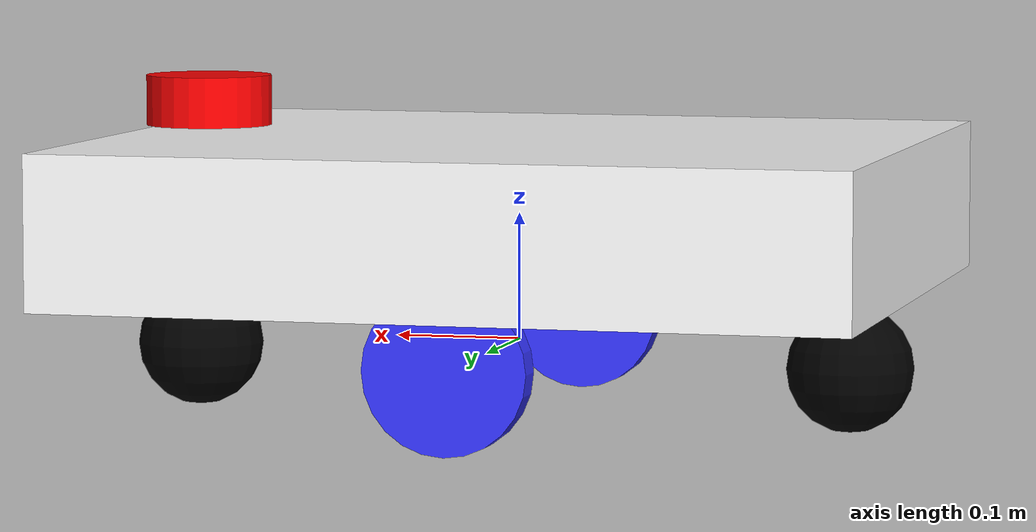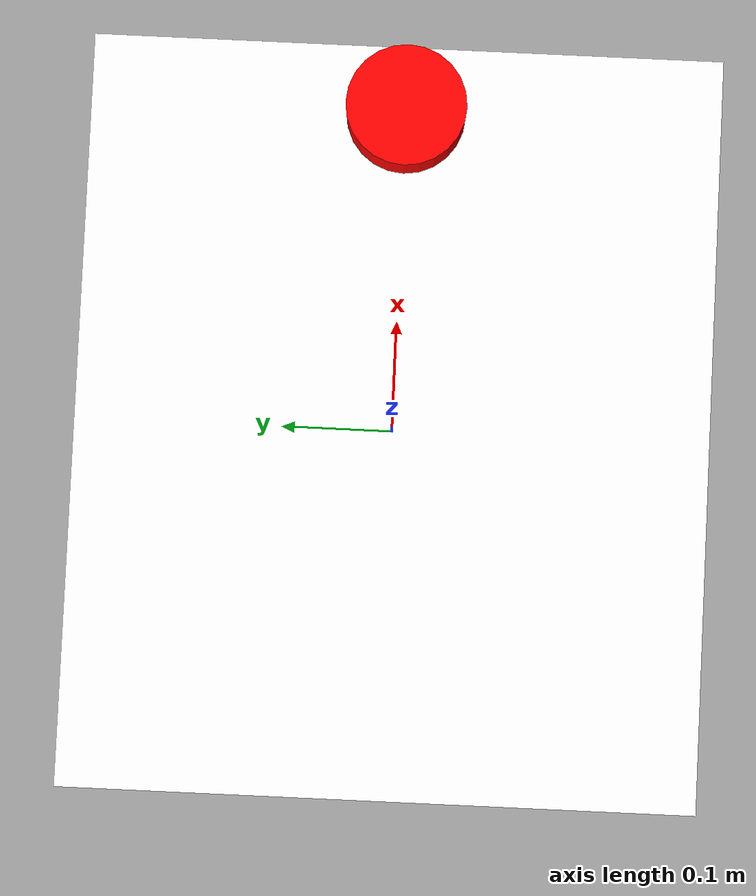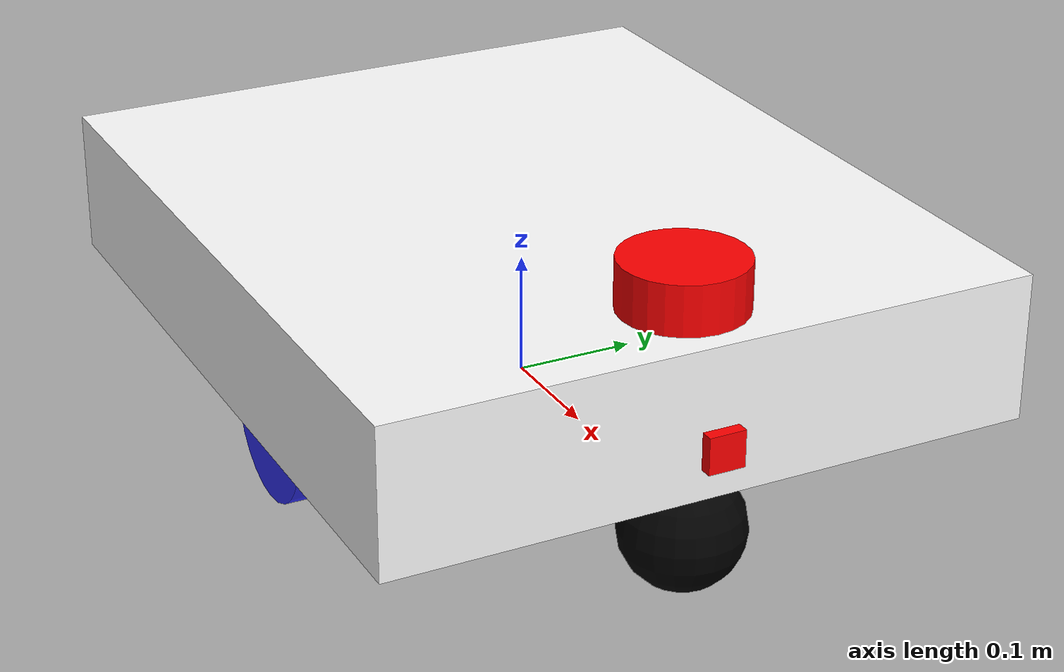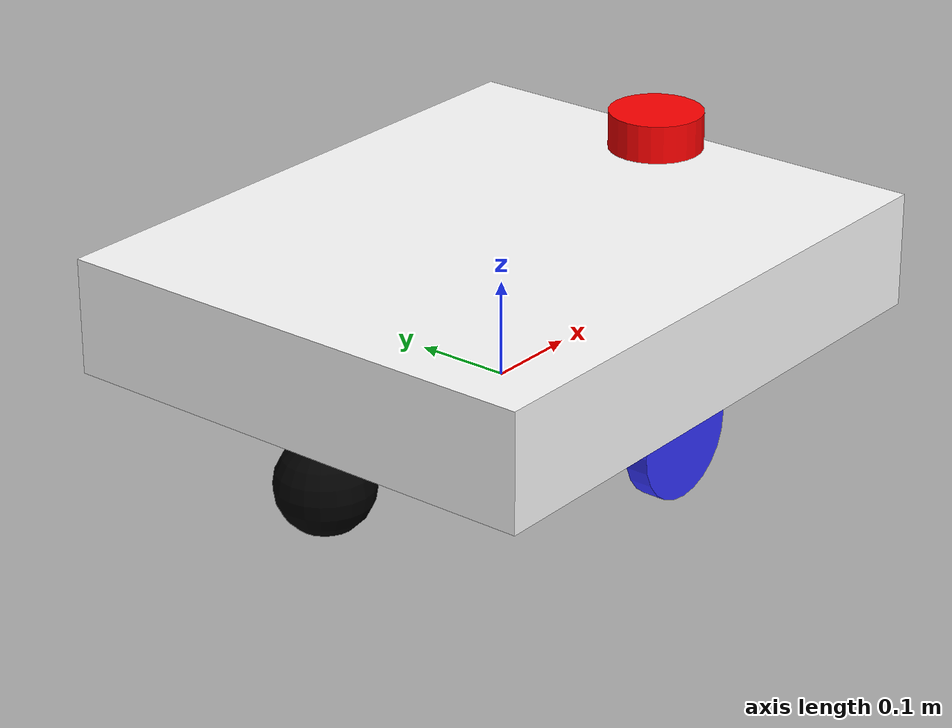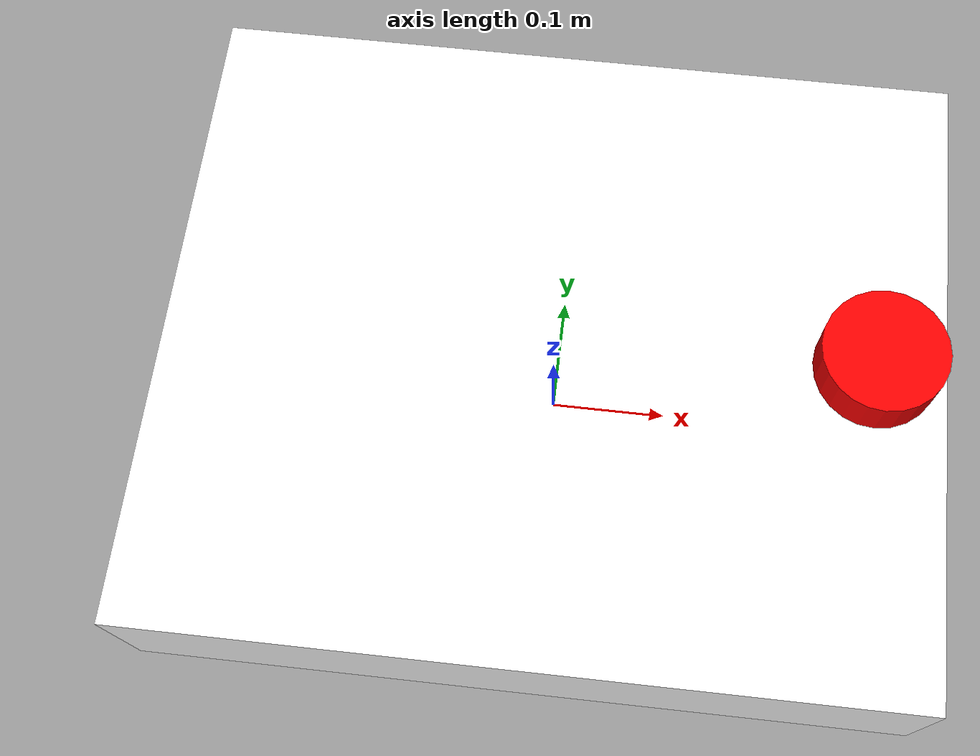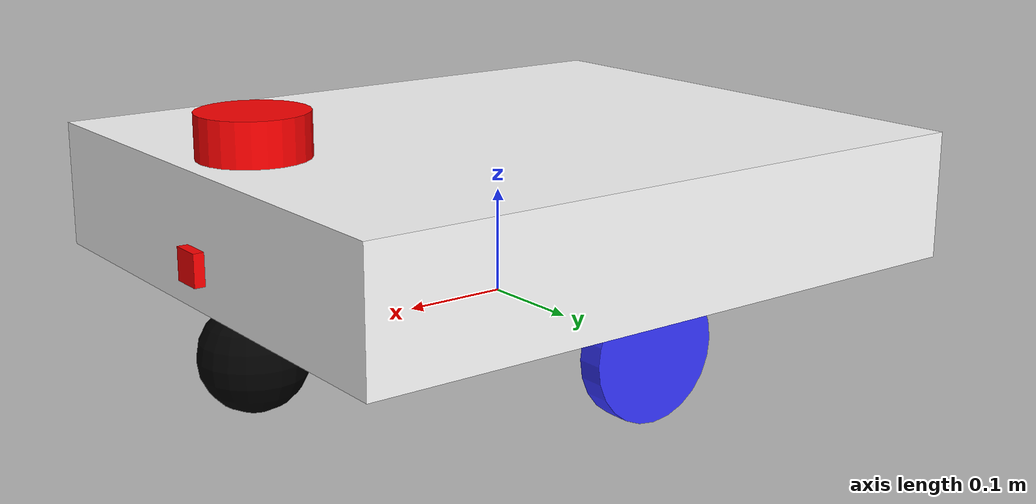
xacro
<?xml version="1.0"?>
<robot xmlns:xacro="http://www.ros.org/wiki/xacro" name="robot">
    <xacro:arg name="use_ros2_control" default="true"/>
    <xacro:arg name="sim_mode" default="false"/>

    <xacro:include filename="robot_core.xacro"/>

    <xacro:if value="$(arg use_ros2_control)">
        <xacro:include filename="ros2_control.xacro"/>
    </xacro:if>
    <xacro:unless value="$(arg use_ros2_control)">
        <xacro:include filename="gazebo_control.xacro"/>
    </xacro:unless>

    <xacro:include filename="lidar.xacro"/>
    <xacro:include filename="camera.xacro"/>
</robot>

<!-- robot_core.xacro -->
<robot xmlns:xacro="http://www.ros.org/wiki/xacro" >

    <xacro:include filename="inertial_macros.xacro"/>

    <material name="white">
        <color rgba="1 1 1 1"/>
    </material>
    <material name="orange">
        <color rgba="1 0.3 0.1 1"/>
    </material>
    <material name="blue">
        <color rgba="0.2 0.2 1 1"/>
    </material>
    <material name="black">
        <color rgba="0 0 0 1"/>
    </material>
    <material name="red">
        <color rgba="1 0 0 1"/>
    </material>

    <!-- BASE LINK -->

    <link name="base_link">
    </link>

    <!-- BASE FOOTPRINT     -->
    <joint name="base_footprint_joint" type="fixed">
        <parent link="base_link"/>
        <child link="base_footprint"/>
        <origin xyz="0 0 0" rpy="0 0 0"/>
    </joint>

    <link name="base_footprint">
    </link>

    <!-- CHASSIS LINK  -->
    <joint name="chassis_joint" type="fixed">
        <parent link="base_link"/>
        <child link="chassis"/>
        <origin xyz="-0.315 0.0 0.0"/>
    </joint>

    <link name="chassis">
        <visual>
            <origin xyz="0.315 0.0 0.1" rpy="0.0 0.0 0.0"/>
            <geometry>
                <box size="0.63 0.53 0.12"/>
            </geometry>
            <material name="white"/>
        </visual>
        <collision>
            <origin xyz="0.315 0.0 0.1" rpy="0.0 0.0 0.0"/>
            <geometry>
                <box size="0.63 0.53 0.12"/>
            </geometry>
        </collision>
        <xacro:inertial_box mass="0.5" x="0.63" y="0.53" z="0.12">
            <origin xyz="0.315 0.0 0.1" rpy="0.0 0.0 0.0"/>
        </xacro:inertial_box>
    </link>
    <gazebo reference="chassis">
        <material>
            Gazebo/White
        </material>
    </gazebo>

    <!-- LEFT WHEEL -->
    <joint name="left_wheel_joint" type="continuous">
        <parent link="base_link"/>
        <child link="left_wheel"/>
        <origin xyz="0.0 0.2125 0.0" rpy="-${pi/2} 0 0"/>
        <axis xyz="0.0 0.0 1.0"/>
    </joint>

    <link name="left_wheel">
        <visual>
            <geometry>
                <cylinder radius="0.0635" length="0.024"/>
            </geometry>
            <material name="blue"/>
        </visual>
        <collision>
            <geometry>
                <sphere radius="0.0635"/>
            </geometry>
        </collision>
        <xacro:inertial_cylinder mass="0.1" length="0.024" radius="0.0635">
            <origin xyz="0 0 0" rpy="0 0 0"/>
        </xacro:inertial_cylinder>
    </link>
    <gazebo reference="left_wheel">
        <material>
            Gazebo/Blue
        </material>
    </gazebo>

    <!-- RIGHT WHEEL -->
    <joint name="right_wheel_joint" type="continuous">
        <parent link="base_link"/>
        <child link="right_wheel"/>
        <origin xyz="0.0 -0.2125 0.0" rpy="${pi/2} 0 0"/>
        <axis xyz="0.0 0.0 -1.0"/>
    </joint>

    <link name="right_wheel">
        <visual>
            <geometry>
                <cylinder radius="0.0635" length="0.024"/>
            </geometry>
            <material name="blue"/>
        </visual>
        <collision>
            <geometry>
                <sphere radius="0.0635"/>
            </geometry>
        </collision>
        <xacro:inertial_cylinder mass="0.1" length="0.024" radius="0.0635">
            <origin xyz="0 0 0" rpy="0 0 0"/>
        </xacro:inertial_cylinder>
    </link>
    <gazebo reference="right_wheel">
        <material>
            Gazebo/Blue
        </material>
    </gazebo>

    <!-- CASTER WHEEL REAR LINK  -->
    <joint name="rear_caster_wheel_joint" type="fixed">
        <parent link="chassis"/>
        <child link="rear_caster_wheel"/>
        <origin xyz="0.58 0.0 -0.01"/>
    </joint>
    <link name="rear_caster_wheel">
        <visual>
            <geometry>
                <sphere radius="0.05"/>
            </geometry>
            <material name="black"/>
        </visual>
        <collision>
            <geometry>
                <sphere radius="0.05"/>
            </geometry>
        </collision>
        <xacro:inertial_sphere mass="0.1" radius="0.05">
            <origin xyz="0.0 0.0 0.0" rpy="0.0 0.0 0.0"/>
        </xacro:inertial_sphere>
    </link>
    <gazebo reference="rear_caster_wheel">
        <material>
            Gazebo/Black
        </material>
    </gazebo>

    <!-- CASTER WHEEL BACK LINK  -->
    <joint name="back_caster_wheel_joint" type="fixed">
        <parent link="chassis"/>
        <child link="back_caster_wheel"/>
        <origin xyz="0.05 0.0 -0.015"/>
    </joint>
    <link name="back_caster_wheel">
        <visual>
            <geometry>
                <sphere radius="0.05"/>
            </geometry>
            <material name="black"/>
        </visual>
        <collision>
            <geometry>
                <sphere radius="0.05"/>
            </geometry>
        </collision>
        <xacro:inertial_sphere mass="0.1" radius="0.05">
            <origin xyz="0.0 0.0 0.0" rpy="0.0 0.0 0.0"/>
        </xacro:inertial_sphere>
    </link>
    <gazebo reference="back_caster_wheel">
        <material>
            Gazebo/Black
        </material>
        <mu1 value="0.001"></mu1>
        <mu2 value="0.001"></mu2>
    </gazebo>

</robot>

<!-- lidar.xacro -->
<robot xmlns:xacro="http://www.ros.org/wiki/xacro" >

    <joint name="laser_joint" type="fixed">
        <parent link="chassis"/>
        <child link="laser_frame"/>
        <origin xyz="0.572 0 0.185" rpy="0 0 3.14159"/>
    </joint>

    <link name="laser_frame">
        <visual>
            <geometry>
                <cylinder radius="0.05" length="0.04"/>
            </geometry>
            <material name="red"/>
        </visual>
        <collision>
            <geometry>
                <cylinder radius="0.05" length="0.04"/>
            </geometry>
        </collision>
        <xacro:inertial_cylinder mass="0.1" length="0.04" radius="0.05">
            <origin xyz="0 0 0" rpy="0 0 0"/>
        </xacro:inertial_cylinder>
    </link>

    <gazebo reference="laser_frame">
        <material>Gazebo/Red</material>

        <sensor name="laser" type="ray">
            <pose> 0 0 0 0 0 0 </pose>
            <visualize>true</visualize>
            <update_rate>10</update_rate>
            <ray>
                <scan>
                    <horizontal>
                        <samples>360</samples>
                        <min_angle>-3.14</min_angle>
                        <max_angle>3.14</max_angle>
                    </horizontal>
                </scan>
                <range>
                    <min>0.3</min>
                    <max>12</max>
                </range>
            </ray>
            <plugin name="laser_controller" filename="libgazebo_ros_ray_sensor.so">
                <ros>
                    <argument>~/out:=scan</argument>
                </ros>
                <output_type>sensor_msgs/LaserScan</output_type>
                <frame_name>laser_frame</frame_name>
            </plugin>
        </sensor>
    </gazebo>

</robot>

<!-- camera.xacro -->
<robot xmlns:xacro="http://www.ros.org/wiki/xacro" >

    <joint name="camera_joint" type="fixed">
        <parent link="chassis"/>
        <child link="camera_link"/>
        <origin xyz="0.635 0 0.08" rpy="0 0 0"/>
    </joint>

    <link name="camera_link">
        <visual>
            <geometry>
                <box size="0.010 0.03 0.03"/>
            </geometry>
            <material name="red"/>
        </visual>
    </link>

    <joint name="camera_optical_joint" type="fixed">
        <parent link="camera_link"/>
        <child link="camera_link_optical"/>
        <origin xyz="0 0 0" rpy="${-pi/2} 0 ${-pi/2}"/>
    </joint>

    <link name="camera_link_optical"></link>

    <gazebo reference="camera_link">
        <material>Gazebo/Red</material>

        <sensor name="camera" type="camera">
            <pose> 0 0 0 0 0 0 </pose>
            <visualize>true</visualize>
            <update_rate>10</update_rate>
            <camera>
                <horizontal_fov>1.089</horizontal_fov>
                <image>
                    <format>R8G8B8</format>
                    <width>640</width>
                    <height>480</height>
                </image>
                <clip>
                    <near>0.05</near>
                    <far>8.0</far>
                </clip>
            </camera>
            <plugin name="camera_controller" filename="libgazebo_ros_camera.so">
                <frame_name>camera_link_optical</frame_name>
            </plugin>
        </sensor>
    </gazebo>

</robot>
